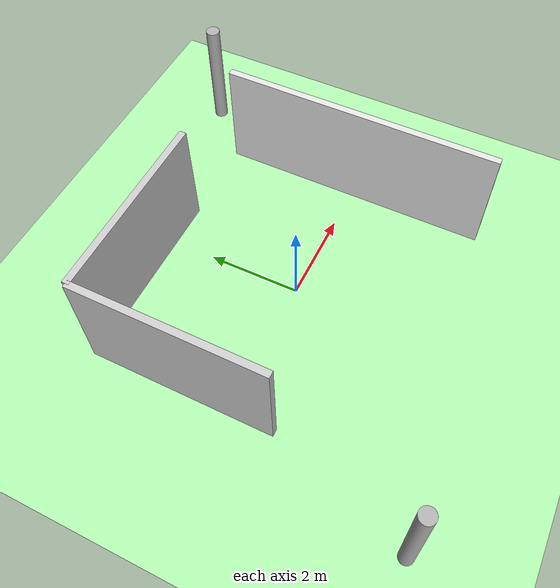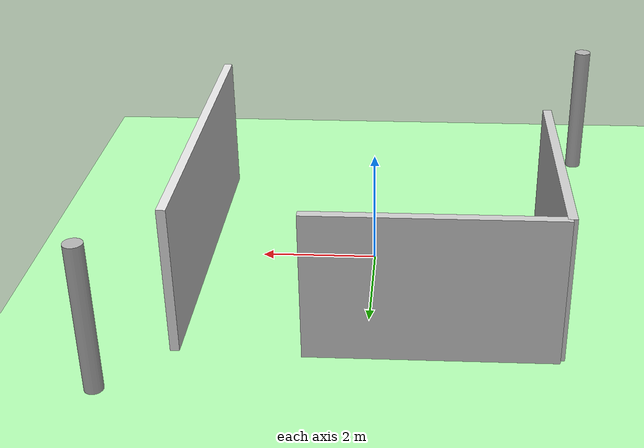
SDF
<sdf version="1.9">
  <world name="rgl_playground">

    <!-- Global RGL scene manager required to upload meshes to GPU -->
    <plugin name="rgl::RGLServerPluginManager" filename="RGLServerPluginManager">
      <do_ignore_entities_in_lidar_link>true</do_ignore_entities_in_lidar_link>
    </plugin>

    <physics name="1ms" type="ignored">
      <max_step_size>0.001</max_step_size>
      <real_time_factor>1</real_time_factor>
      <real_time_update_rate>1000</real_time_update_rate>
    </physics>
    <plugin name="gz::sim::systems::Physics" filename="ignition-gazebo-physics-system"/>
    <plugin name="gz::sim::systems::UserCommands" filename="ignition-gazebo-user-commands-system"/>
    <plugin name="gz::sim::systems::SceneBroadcaster" filename="ignition-gazebo-scene-broadcaster-system"/>
    <plugin name="gz::sim::systems::Contact" filename="ignition-gazebo-contact-system"/>
    <gravity>0 0 -9.8</gravity>
    <magnetic_field>6e-06 2.3e-05 -4.2e-05</magnetic_field>
    <atmosphere type="adiabatic"/>

    <scene>
      <ambient>0.4 0.4 0.4 1</ambient>
      <background>0.7 0.7 0.7 1</background>
      <shadows>true</shadows>
    </scene>

    <!-- Ground plane remains unchanged -->
    <model name="ground_plane">
      <static>true</static>
      <link name="link">
        <collision name="collision">
          <geometry>
            <plane>
              <normal>0 0 1</normal>
              <size>100 100</size>
            </plane>
          </geometry>
          <surface>
            <friction>
              <ode/>
            </friction>
            <bounce/>
            <contact/>
          </surface>
        </collision>
        <visual name="visual">
          <laser_retro>0</laser_retro>
          <geometry>
            <plane>
              <normal>0 0 1</normal>
              <size>100 100</size>
            </plane>
          </geometry>
          <material>
            <ambient>0.8 0.8 0.8 1</ambient>
            <diffuse>0.7 0.99 0.7 1</diffuse>
            <specular>0.8 0.8 0.8 1</specular>
          </material>
        </visual>
        <pose>0 0 0 0 0 0</pose>
        <inertial>
          <pose>0 0 0 0 0 0</pose>
          <mass>1</mass>
          <inertia>
            <ixx>1</ixx>
            <ixy>0</ixy>
            <ixz>0</ixz>
            <iyy>1</iyy>
            <iyz>0</iyz>
            <izz>1</izz>
          </inertia>
        </inertial>
        <enable_wind>false</enable_wind>
      </link>
      <pose>0 0 0 0 0 0</pose>
      <self_collide>false</self_collide>
    </model>

    <!-- Round column (cylindrical) in the first quadrant -->
    <model name="round_column_1">
      <static>true</static>
      <!-- Placed at (4, 4); center z set to 1.25 so that a 2.5 m tall column rests on the floor -->
      <pose>4 4 1.25 0 0 0</pose>
      <link name="link">
        <collision name="collision">
          <geometry>
            <cylinder>
              <radius>0.15</radius>
              <length>2.5</length>
            </cylinder>
          </geometry>
          <surface>
            <friction>
              <ode/>
            </friction>
            <bounce/>
            <contact/>
          </surface>
        </collision>
        <visual name="visual">
          <geometry>
            <cylinder>
              <radius>0.15</radius>
              <length>2.5</length>
            </cylinder>
          </geometry>
          <material>
            <ambient>0.5 0.5 0.5 1</ambient>
            <diffuse>0.7 0.7 0.7 1</diffuse>
            <specular>0.3 0.3 0.3 1</specular>
          </material>
        </visual>
        <inertial>
          <mass>1</mass>
          <inertia>
            <ixx>0.1</ixx>
            <ixy>0</ixy>
            <ixz>0</ixz>
            <iyy>0.1</iyy>
            <iyz>0</iyz>
            <izz>0.1</izz>
          </inertia>
        </inertial>
      </link>
    </model>

    <!-- Round column (cylindrical) in the third quadrant -->
    <model name="round_column_2">
      <static>true</static>
      <!-- Placed at (-4, -4); center z at 1.25 -->
      <pose>-4 -4 1.25 0 0 0</pose>
      <link name="link">
        <collision name="collision">
          <geometry>
            <cylinder>
              <radius>0.15</radius>
              <length>2.5</length>
            </cylinder>
          </geometry>
          <surface>
            <friction>
              <ode/>
            </friction>
            <bounce/>
            <contact/>
          </surface>
        </collision>
        <visual name="visual">
          <geometry>
            <cylinder>
              <radius>0.15</radius>
              <length>2.5</length>
            </cylinder>
          </geometry>
          <material>
            <ambient>0.5 0.5 0.5 1</ambient>
            <diffuse>0.7 0.7 0.7 1</diffuse>
            <specular>0.3 0.3 0.3 1</specular>
          </material>
        </visual>
        <inertial>
          <mass>1</mass>
          <inertia>
            <ixx>0.1</ixx>
            <ixy>0</ixy>
            <ixz>0</ixz>
            <iyy>0.1</iyy>
            <iyz>0</iyz>
            <izz>0.1</izz>
          </inertia>
        </inertial>
      </link>
    </model>

    <!-- L-shaped wall (with a corner) in the second quadrant -->
    <model name="wall_corner">
      <static>true</static>
      <!-- The model origin is placed at (-3, 3), outside the central free area -->
      <pose>-3 3 0 0 0 0</pose>
      <link name="wall_corner_link">
        <collision name="collision_horizontal">
          <pose>2 0 1.25 0 0 0</pose>
          <geometry>
            <box>
              <size>4 0.15 2.5</size>
            </box>
          </geometry>
          <surface>
            <friction>
              <ode/>
            </friction>
          </surface>
        </collision>
        <visual name="visual_horizontal">
          <pose>2 0 1.25 0 0 0</pose>
          <geometry>
            <box>
              <size>4 0.15 2.5</size>
            </box>
          </geometry>
          <material>
            <ambient>0.6 0.6 0.6 1</ambient>
            <diffuse>0.8 0.8 0.8 1</diffuse>
          </material>
        </visual>

        <!-- Vertical segment: extends southward from the same corner.
             Now 4 m long (in y), 0.15 m thick (in x), and 2.5 m tall.
             Its center is offset by (0, -2, 1.25). -->
        <collision name="collision_vertical">
          <pose>0 -2 1.25 0 0 0</pose>
          <geometry>
            <box>
              <size>0.15 4 2.5</size>
            </box>
          </geometry>
          <surface>
            <friction>
              <ode/>
            </friction>
          </surface>
        </collision>
        <visual name="visual_vertical">
          <pose>0 -2 1.25 0 0 0</pose>
          <geometry>
            <box>
              <size>0.15 4 2.5</size>
            </box>
          </geometry>
          <material>
            <ambient>0.6 0.6 0.6 1</ambient>
            <diffuse>0.8 0.8 0.8 1</diffuse>
          </material>
        </visual>

        <inertial>
          <mass>1</mass>
          <inertia>
            <ixx>0.1</ixx>
            <ixy>0</ixy>
            <ixz>0</ixz>
            <iyy>0.1</iyy>
            <iyz>0</iyz>
            <izz>0.1</izz>
          </inertia>
        </inertial>
      </link>
    </model>

    <!-- Straight wall placed to the right of the free region -->
    <model name="wall_straight">
      <static>true</static>
      <!-- Placed at (3, 0); center z set to 1.25 for a 2.5 m tall wall.
           The free zone (x up to 2.5) remains clear. -->
      <pose>3 0 1.25 0 0 0</pose>
      <link name="wall_straight_link">
        <collision name="collision">
          <geometry>
            <!-- This wall is 6 m long, 0.15 m thick, and 2.5 m tall -->
            <box>
              <size>0.15 6 2.5</size>
            </box>
          </geometry>
          <surface>
            <friction>
              <ode/>
            </friction>
          </surface>
        </collision>
        <visual name="visual">
          <geometry>
            <box>
              <size>0.15 6 2.5</size>
            </box>
          </geometry>
          <material>
            <ambient>0.7 0.7 0.7 1</ambient>
            <diffuse>0.9 0.9 0.9 1</diffuse>
          </material>
        </visual>
        <inertial>
          <mass>1</mass>
          <inertia>
            <ixx>0.1</ixx>
            <ixy>0</ixy>
            <ixz>0</ixz>
            <iyy>0.1</iyy>
            <iyz>0</iyz>
            <izz>0.1</izz>
          </inertia>
        </inertial>
      </link>
    </model>

    <!-- Sun light remains unchanged -->
    <light name="sun" type="directional">
      <pose>0 0 10 0 0 0</pose>
      <cast_shadows>true</cast_shadows>
      <intensity>1</intensity>
      <direction>-0.5 0.1 -0.9</direction>
      <diffuse>0.8 0.8 0.8 1</diffuse>
      <specular>0.2 0.2 0.2 1</specular>
      <attenuation>
        <range>1000</range>
        <linear>0.01</linear>
        <constant>0.9</constant>
        <quadratic>0.001</quadratic>
      </attenuation>
      <spot>
        <inner_angle>0</inner_angle>
        <outer_angle>0</outer_angle>
        <falloff>0</falloff>
      </spot>
    </light>

  </world>
</sdf>
